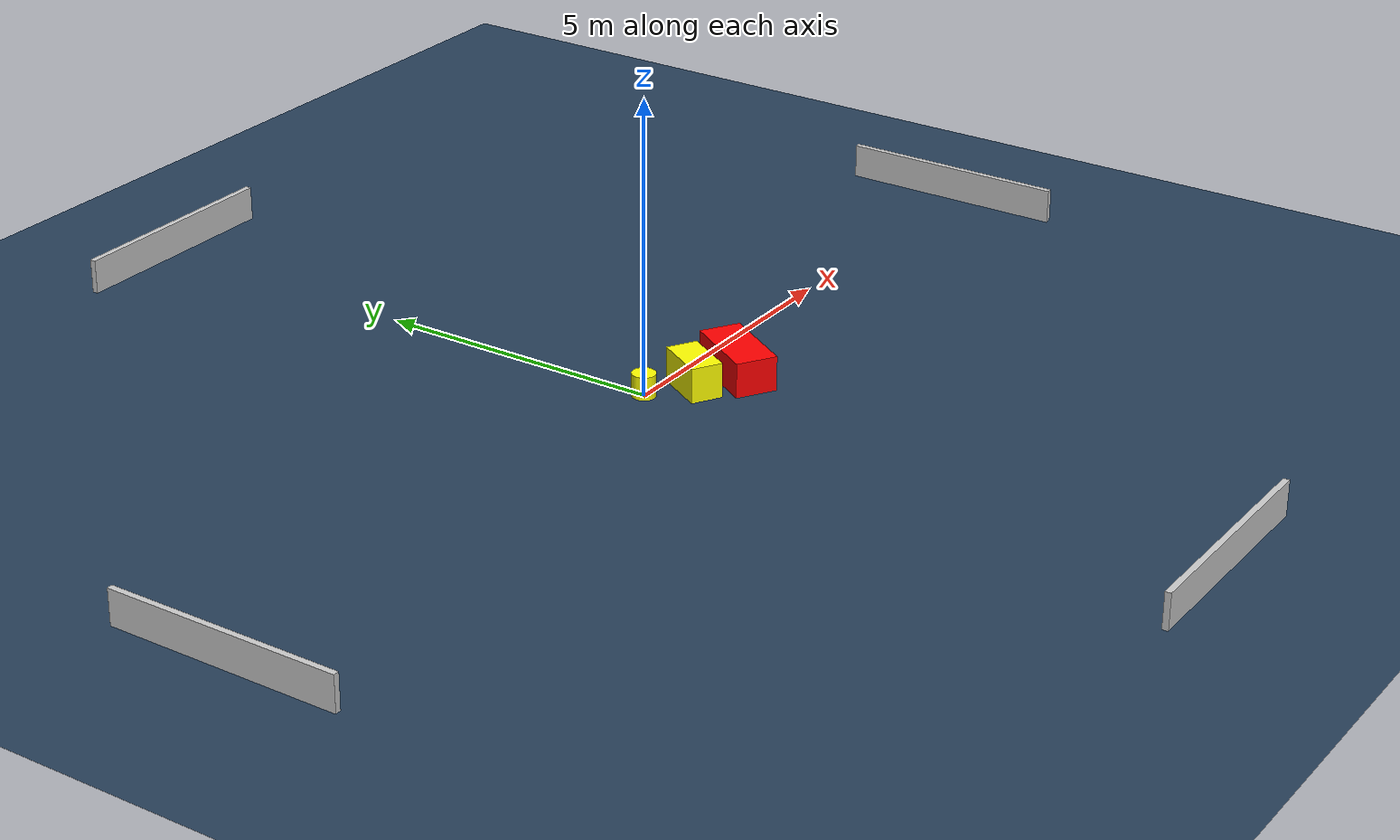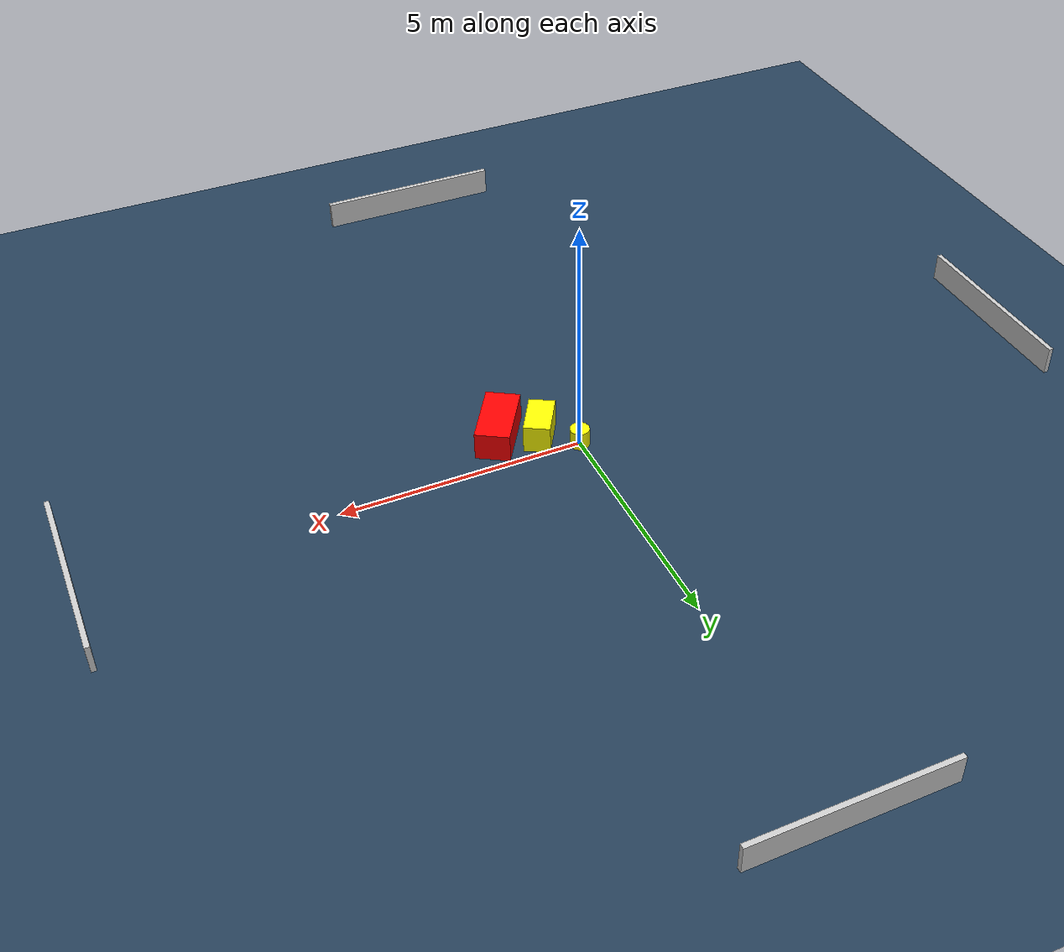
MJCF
<?xml version="1.0" ?>
<mujoco model="generated_environment">
  <option timestep="0.01" integrator="RK4" cone="elliptic"/>
  <default>
    <geom density="1"/>
  </default>
  <asset>
    <texture builtin="gradient" height="3072" name="skybox" rgb1="0.3 0.5 0.7" rgb2="0 0 0" type="skybox" width="512"/>
    <texture builtin="checker" height="300" name="groundplane" rgb1="0.2 0.3 0.4" rgb2="0.1 0.2 0.3" type="2d" width="300"/>
    <material name="groundplane" reflectance="0.2" texrepeat="5 5" texture="groundplane"/>
  </asset>
  <worldbody>
    <light dir="0 0 -1" directional="true" pos="0 0 1.5"/>
    <geom condim="3" friction="0.5 0.005 0.001" material="groundplane" name="floor" pos="0 0 0" size="0 0 0.05" type="plane"/>
    <body name="walls">
      <geom name="wall_1" condim="4" pos="-10.0 0.0 0.3" rgba="0.800000011920929 0.800000011920929 0.800000011920929 1.0" size="0.05 2.0 0.3" type="box"/>
      <geom name="wall_2" condim="4" pos="10.0 0.0 0.3" rgba="0.800000011920929 0.800000011920929 0.800000011920929 1.0" size="0.05 2.0 0.3" type="box"/>
      <geom name="wall_3" condim="4" pos="0.0 -10.0 0.3" rgba="0.800000011920929 0.800000011920929 0.800000011920929 1.0" size="2.0 0.05 0.3" type="box"/>
      <geom name="wall_4" condim="4" pos="0.0 10.0 0.3" rgba="0.800000011920929 0.800000011920929 0.800000011920929 1.0" size="2.0 0.05 0.3" type="box"/>
    </body>
    <body name="robot">
      <joint name="joint_x" type="slide" pos="0 0 0" axis="1 0 0"/>
      <joint name="joint_y" type="slide" pos="0 0 0" axis="0 1 0"/>
      <geom name="robot" type="cylinder" pos="0.0 0.0 0.2" size="0.2 0.2 0.0" mass="5.0" friction="1.0 0.005 0.0001" condim="4" rgba="1.0 1.0 0.0 1.0"/>
    </body>
    <body name="obstacle_1_movable">
      <geom name="obstacle_1_movable" condim="4" pos="0.6436892308045845 -0.5289583534389832 0.3" euler="0 0 329.5236294302199" friction="0.0 0.005 0.001" rgba="1.0 1.0 0.0 1.0" size="0.2705757971615505 0.4603115361400251 0.3" type="box" mass="0.1"/>
      <joint type="free"/>
    </body>
    <body name="obstacle_2_static">
      <geom name="obstacle_2_static" condim="4" pos="1.4021313287363322 -0.8695636145692968 0.3" euler="0 0 148.18029292290623" friction="0.0 0.005 0.001" rgba="1.0 0.0 0.0 1.0" size="0.35631812525324347 0.6915574042778616 0.3" type="box"/>
    </body>
  </worldbody>
  <actuator>
    <motor name="actuator_x" joint="joint_x" gear="1" ctrlrange="-1 1"/>
    <motor name="actuator_y" joint="joint_y" gear="1" ctrlrange="-1 1"/>
  </actuator>
</mujoco>
